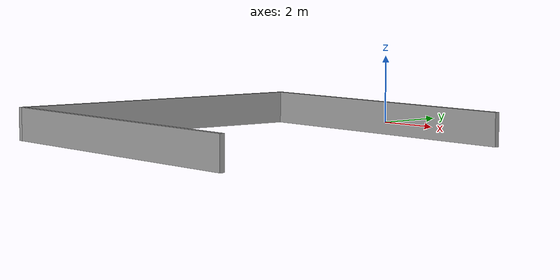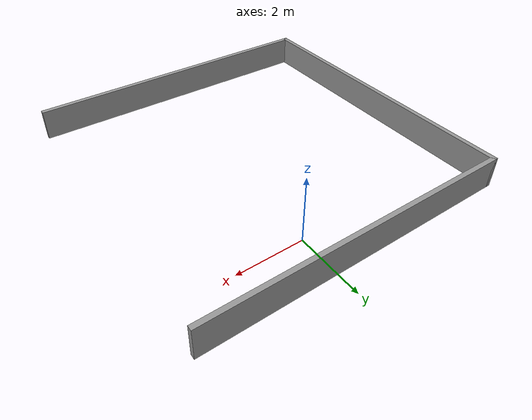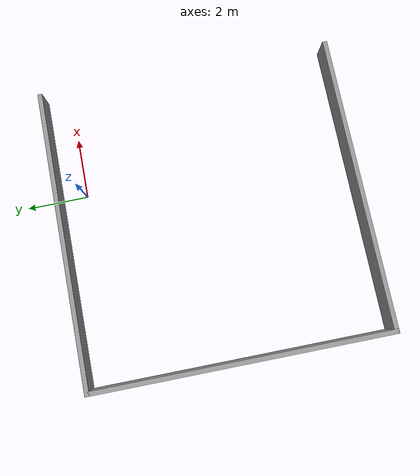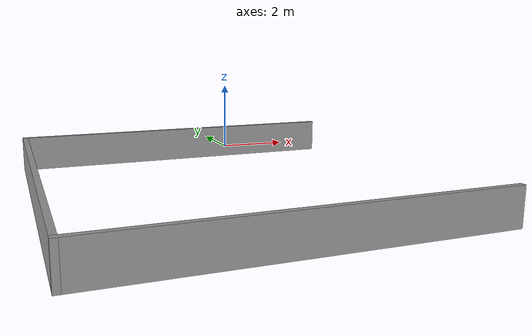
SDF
<?xml version='1.0'?>
<sdf version='1.7'>
  <model name='recinto'>
    <pose>-1.2972 -3.96816 0 0 -0 0</pose>
    <link name='Wall_0'>
      <collision name='Wall_0_Collision'>
        <geometry>
          <box>
            <size>10 0.15 1</size>
          </box>
        </geometry>
        <pose>0 0 0 0 -0 0</pose>
      </collision>
      <visual name='Wall_0_Visual'>
        <pose>0 0 0 0 -0 0</pose>
        <geometry>
          <box>
            <size>10 0.15 1</size>
          </box>
        </geometry>
        <material>
          <script>
            <uri>file://media/materials/scripts/gazebo.material</uri>
            <name>Gazebo/Grey</name>
          </script>
          <ambient>1 1 1 1</ambient>
        </material>
        <meta>
          <layer>0</layer>
        </meta>
      </visual>
      <pose>0 4.925 0 0 -0 0</pose>
    </link>

    <link name='Wall_3'>
      <collision name='Wall_3_Collision'>
        <geometry>
          <box>
            <size>10 0.15 1</size>
          </box>
        </geometry>
        <pose>0 0 0 0 -0 0</pose>
      </collision>
      <visual name='Wall_3_Visual'>
        <pose>0 0 0 0 -0 0</pose>
        <geometry>
          <box>
            <size>10 0.15 1</size>
          </box>
        </geometry>
        <material>
          <script>
            <uri>file://media/materials/scripts/gazebo.material</uri>
            <name>Gazebo/Grey</name>
          </script>
          <ambient>1 1 1 1</ambient>
        </material>
        <meta>
          <layer>0</layer>
        </meta>
      </visual>
      <pose>0 -4.925 0 0 -0 3.14159</pose>
    </link>
    <link name='Wall_4'>
      <collision name='Wall_4_Collision'>
        <geometry>
          <box>
            <size>10 0.15 1</size>
          </box>
        </geometry>
        <pose>0 0 0 0 -0 0</pose>
      </collision>
      <visual name='Wall_4_Visual'>
        <pose>0 0 0 0 -0 0</pose>
        <geometry>
          <box>
            <size>10 0.15 1</size>
          </box>
        </geometry>
        <material>
          <script>
            <uri>file://media/materials/scripts/gazebo.material</uri>
            <name>Gazebo/Grey</name>
          </script>
          <ambient>1 1 1 1</ambient>
        </material>
        <meta>
          <layer>0</layer>
        </meta>
      </visual>
      <pose>-4.925 0 0 0 -0 1.5708</pose>
    </link>
    <static>1</static>
  </model>
</sdf>
